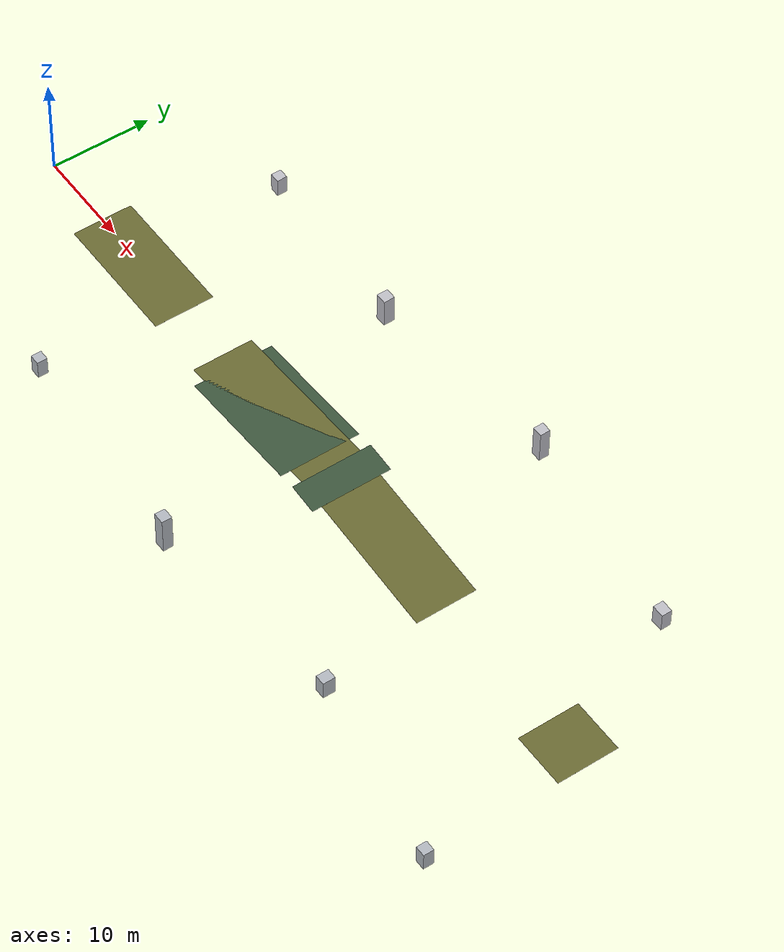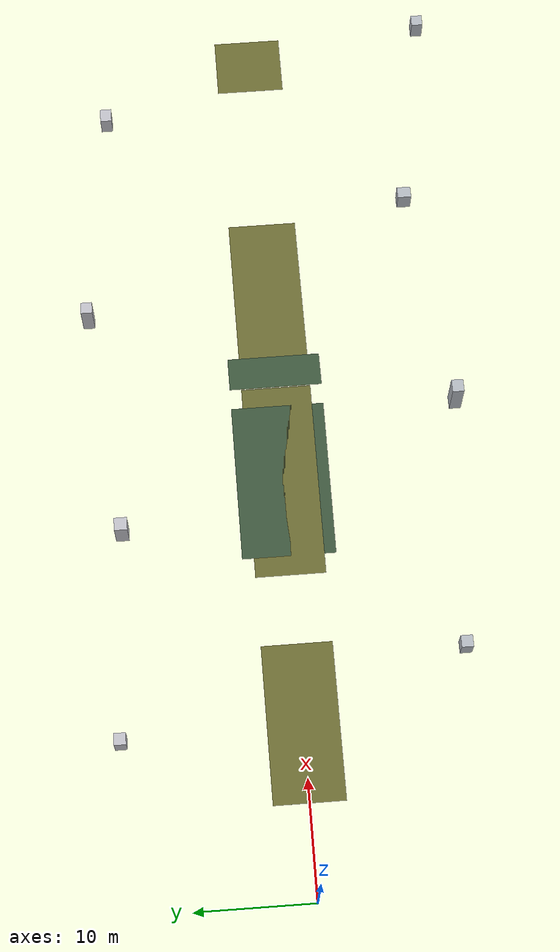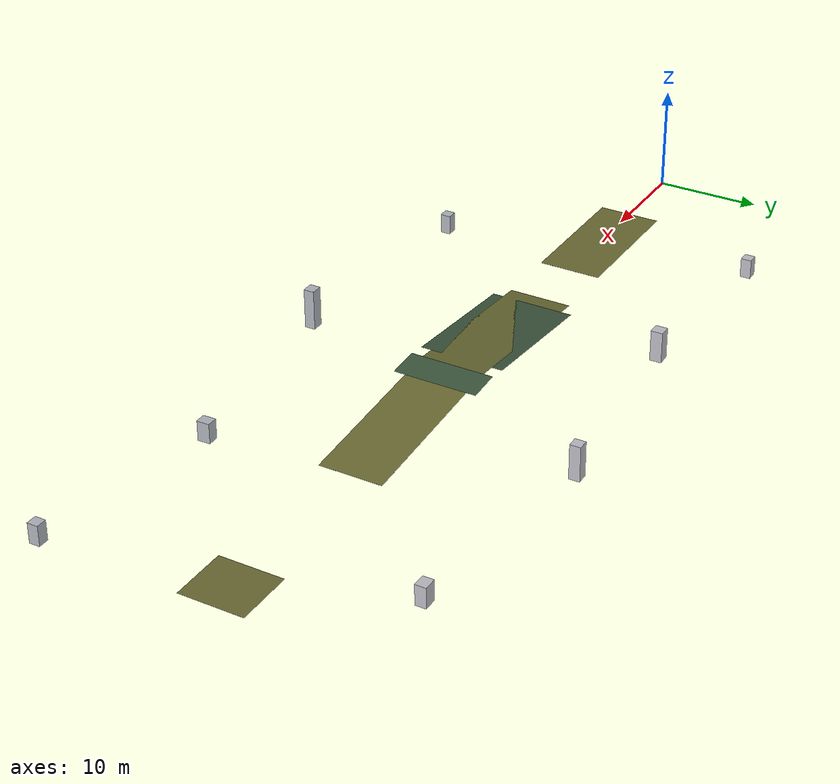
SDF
<sdf version="1.6">
 <world name="shipyard_indoor_100x50">
  <model name="spawn_lane_markers">
   <static>true</static>
   <link name="markers">
    <visual name="spawn_pad_left_slope_visual">
     <pose>35.66665 0 0.680170273206564 0 -0.0872664625997165 0</pose>
     <geometry><box><size>13.3333 8 0.002</size></box></geometry>
     <material><ambient>0.18 0.22 0.18 1</ambient><diffuse>0.24 0.34 0.24 1</diffuse></material>
    </visual>
    <visual name="spawn_pad_right_slope_visual">
     <pose>45.5 0 1.41034054641313 0 0.0872664625997165 0</pose>
     <geometry><box><size>3 8 0.002</size></box></geometry>
     <material><ambient>0.18 0.22 0.18 1</ambient><diffuse>0.24 0.34 0.24 1</diffuse></material>
    </visual>
    <visual name="main_lane_west_flat_visual">
     <pose>14.66665 0 0.002 0 0 0</pose>
     <geometry><box><size>13.3333 6 0.002</size></box></geometry>
     <material><ambient>0.24 0.24 0.18 1</ambient><diffuse>0.42 0.42 0.20 1</diffuse></material>
    </visual>
    <visual name="main_lane_left_slope_visual">
     <pose>35.66665 0 0.680170273206564 0 -0.0872664625997165 0</pose>
     <geometry><box><size>16.6667 6 0.002</size></box></geometry>
     <material><ambient>0.24 0.24 0.18 1</ambient><diffuse>0.42 0.42 0.20 1</diffuse></material>
    </visual>
    <visual name="main_lane_right_slope_visual">
     <pose>52.33335 0 0.680170273206564 0 0.0872664625997165 0</pose>
     <geometry><box><size>16.6667 6 0.002</size></box></geometry>
     <material><ambient>0.24 0.24 0.18 1</ambient><diffuse>0.42 0.42 0.20 1</diffuse></material>
    </visual>
    <visual name="main_lane_east_flat_visual">
     <pose>77.33335 0 0.002 0 0 0</pose>
     <geometry><box><size>5.3333 6 0.002</size></box></geometry>
     <material><ambient>0.24 0.24 0.18 1</ambient><diffuse>0.42 0.42 0.20 1</diffuse></material>
    </visual>
   </link>
  </model>
  <model name="column_rows">
   <static>true</static>
   <link name="columns">
    <collision name="north_col_1_collision">
     <pose>14 15 0.95 0 0 0</pose>
     <geometry><box><size>1.0 1.0 1.9</size></box></geometry>
    </collision>
    <visual name="north_col_1_visual">
     <pose>14 15 0.95 0 0 0</pose>
     <geometry><box><size>1.0 1.0 1.9</size></box></geometry>
     <material><ambient>0.50 0.50 0.52 1</ambient><diffuse>0.75 0.75 0.78 1</diffuse></material>
    </visual>
    <collision name="north_col_2_collision">
     <pose>32 14 1.48336816155618 0 0 0</pose>
     <geometry><box><size>1.1 1.1 2.96673632311236</size></box></geometry>
    </collision>
    <visual name="north_col_2_visual">
     <pose>32 14 1.48336816155618 0 0 0</pose>
     <geometry><box><size>1.1 1.1 2.96673632311236</size></box></geometry>
     <material><ambient>0.50 0.50 0.52 1</ambient><diffuse>0.75 0.75 0.78 1</diffuse></material>
    </visual>
    <collision name="north_col_3_collision">
     <pose>52 16 1.64993151634126 0 0 0</pose>
     <geometry><box><size>1.0 1.0 3.29986303268252</size></box></geometry>
    </collision>
    <visual name="north_col_3_visual">
     <pose>52 16 1.64993151634126 0 0 0</pose>
     <geometry><box><size>1.0 1.0 3.29986303268252</size></box></geometry>
     <material><ambient>0.50 0.50 0.52 1</ambient><diffuse>0.75 0.75 0.78 1</diffuse></material>
    </visual>
    <collision name="north_col_4_collision">
     <pose>72 13.5 0.95 0 0 0</pose>
     <geometry><box><size>1.2 1.0 1.9</size></box></geometry>
    </collision>
    <visual name="north_col_4_visual">
     <pose>72 13.5 0.95 0 0 0</pose>
     <geometry><box><size>1.2 1.0 1.9</size></box></geometry>
     <material><ambient>0.50 0.50 0.52 1</ambient><diffuse>0.75 0.75 0.78 1</diffuse></material>
    </visual>
    <collision name="south_col_1_collision">
     <pose>20 -14 0.95 0 0 0</pose>
     <geometry><box><size>1.0 1.0 1.9</size></box></geometry>
    </collision>
    <visual name="south_col_1_visual">
     <pose>20 -14 0.95 0 0 0</pose>
     <geometry><box><size>1.0 1.0 1.9</size></box></geometry>
     <material><ambient>0.46 0.48 0.50 1</ambient><diffuse>0.70 0.72 0.75 1</diffuse></material>
    </visual>
    <collision name="south_col_2_collision">
     <pose>42 -15.5 1.91673632311236 0 0 0</pose>
     <geometry><box><size>1.1 1.0 3.83347264622472</size></box></geometry>
    </collision>
    <visual name="south_col_2_visual">
     <pose>42 -15.5 1.91673632311236 0 0 0</pose>
     <geometry><box><size>1.1 1.0 3.83347264622472</size></box></geometry>
     <material><ambient>0.46 0.48 0.50 1</ambient><diffuse>0.70 0.72 0.75 1</diffuse></material>
    </visual>
    <collision name="south_col_3_collision">
     <pose>62 -13 0.95 0 0 0</pose>
     <geometry><box><size>1.0 1.2 1.9</size></box></geometry>
    </collision>
    <visual name="south_col_3_visual">
     <pose>62 -13 0.95 0 0 0</pose>
     <geometry><box><size>1.0 1.2 1.9</size></box></geometry>
     <material><ambient>0.46 0.48 0.50 1</ambient><diffuse>0.70 0.72 0.75 1</diffuse></material>
    </visual>
    <collision name="south_col_4_collision">
     <pose>80 -16 0.95 0 0 0</pose>
     <geometry><box><size>1.0 1.0 1.9</size></box></geometry>
    </collision>
    <visual name="south_col_4_visual">
     <pose>80 -16 0.95 0 0 0</pose>
     <geometry><box><size>1.0 1.0 1.9</size></box></geometry>
     <material><ambient>0.46 0.48 0.50 1</ambient><diffuse>0.70 0.72 0.75 1</diffuse></material>
    </visual>
   </link>
  </model>
 </world>
</sdf>
